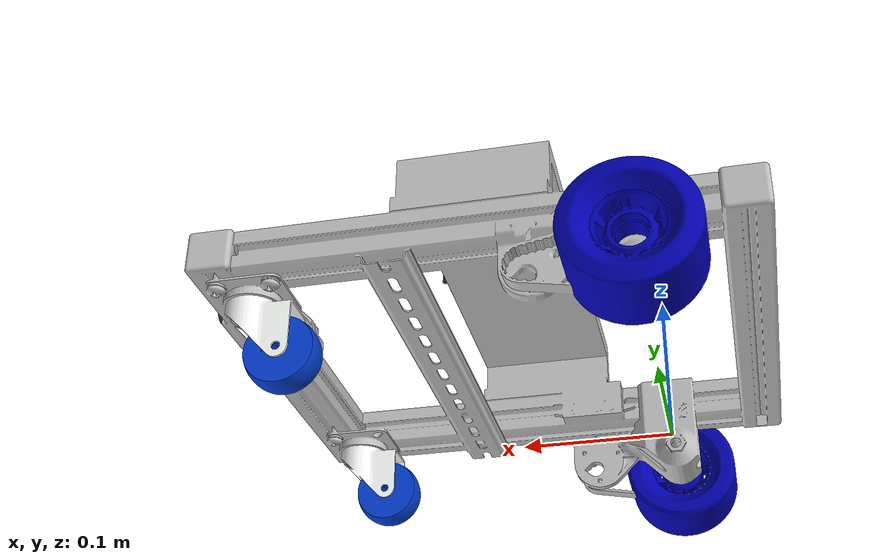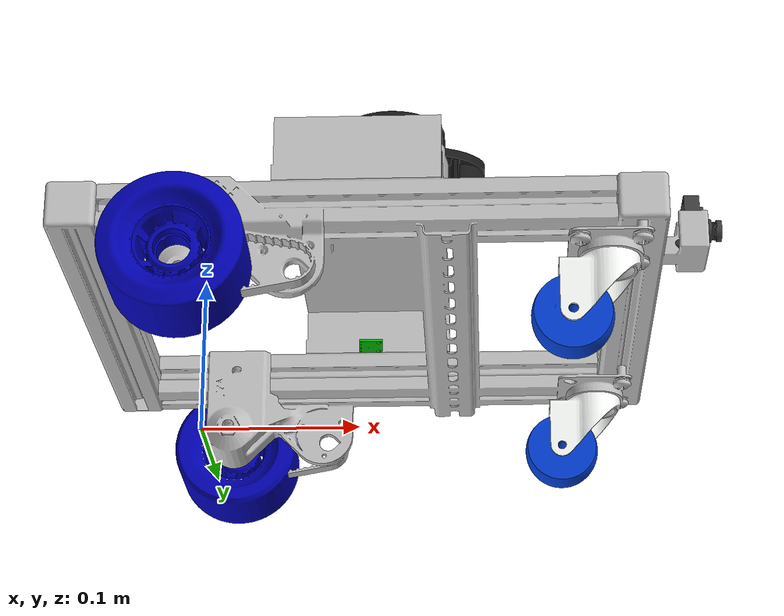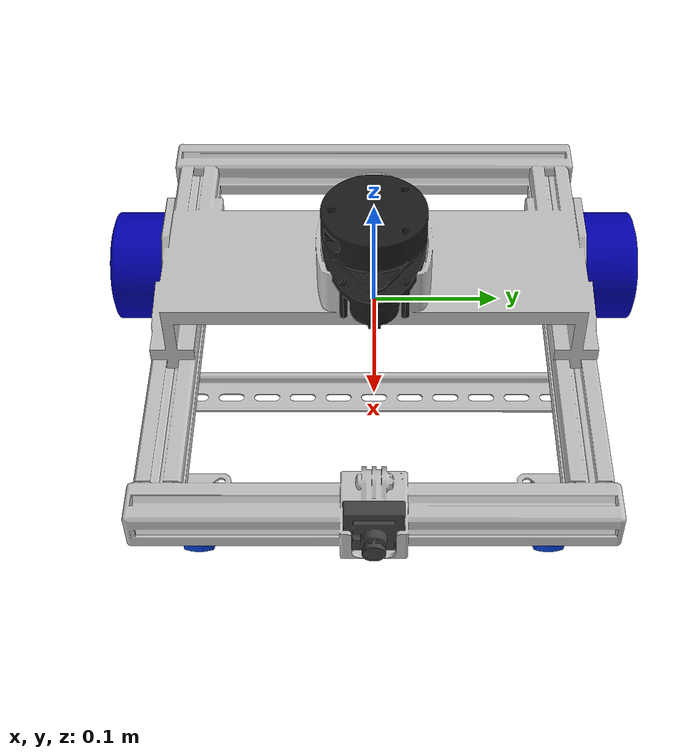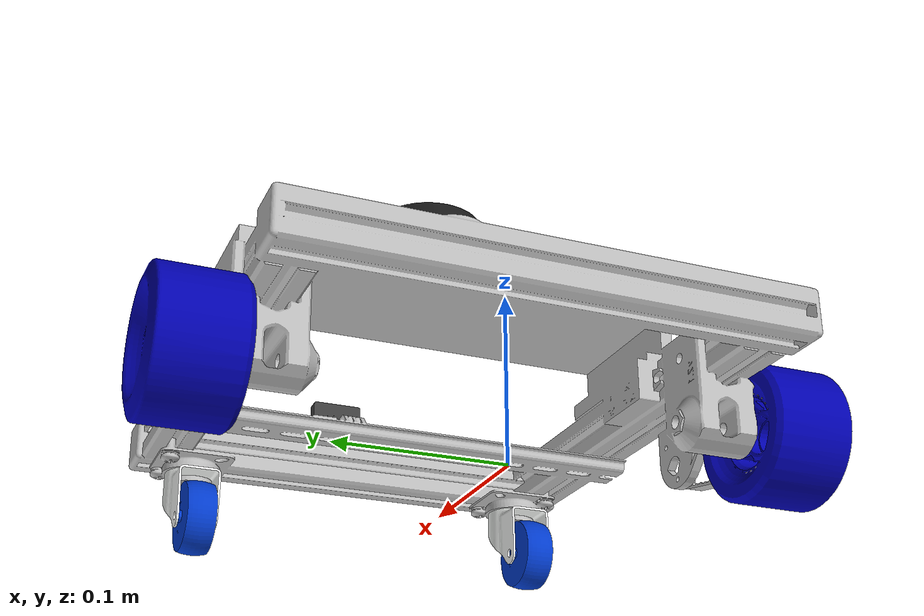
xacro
<?xml version="1.0"?>
<robot name="scuttle" xmlns:xacro="http://www.ros.org/wiki/xacro">

    <xacro:arg name="is_ignition" default="true"/>
    <xacro:arg name="is_sim" default="False"/>

    <xacro:include filename="$(find scuttle_description)/urdf/materials.xacro" />
    <xacro:include filename="$(find scuttle_description)/urdf/scuttle_gazebo.xacro" />
    <xacro:include filename="$(find scuttle_description)/urdf/scuttle_ros2_control.xacro" />

    <link name="base_link">
    </link>

    <joint name="chassis_joint" type="fixed">
        <origin rpy="0 0 0" xyz="0.10539999389648432 0 0.084749938964843793"/>
        <parent link="base_link"/>
        <child link="chassis_link"/>
    </joint>

    <link name="chassis_link">
        <inertial>
            <origin xyz="0.0186619834518535 -0.00566481668803045 0.00285821314817525" rpy="0 0 0" />
            <mass value="2.11836530492584" />
            <inertia ixx="0.00720645292368122" ixy="-2.4086992758464E-07" ixz="-3.48347257751126E-06"
                     iyy="0.00251958862239291" iyz="9.70712899032344E-08" izz="0.00923528201076481" />
        </inertial>
        <visual>
            <origin xyz="0 0 0" rpy="0 0 0" />
            <geometry>
                <mesh filename="package://scuttle_description/meshes/chassis_link.STL" />
            </geometry>
            <material name="">
                <color rgba="0.752941176470588 0.752941176470588 0.752941176470588 1" />
            </material>
        </visual>
        <collision>
            <origin xyz="0 0 0" rpy="0 0 0" />
            <geometry>
                <mesh filename="package://scuttle_description/meshes/chassis_link.STL" />
            </geometry>
        </collision>
    </link>

    <joint name="camera_joint" type="fixed">
        <origin xyz="0.22885 0 0.04721" rpy="0 0 0" />
        <parent link="chassis_link" />
        <child link="camera_link" />
    </joint>

    <link name="camera_link">
        <inertial>
            <origin xyz="-0.0177983462673726 -7.09300539509634E-05 -0.000151685166925195" rpy="0 0 0" />
            <mass value="0.0167460724515451" />
            <inertia ixx="3.10021128481168E-06" ixy="-2.05374604483769E-08" ixz="-2.39460550037463E-08"
                     iyy="2.04412547159972E-06" iyz="-2.79729653570943E-08" izz="2.02123019070592E-06" />
        </inertial>
        <visual>
            <origin xyz="0 0 0" rpy="0 0 0" />
            <geometry>
                <mesh filename="package://scuttle_description/meshes/camera_link.STL" />
            </geometry>
            <material name="gray"/>
        </visual>
        <collision>
            <origin xyz="0 0 0" rpy="0 0 0" />
            <geometry>
                <mesh filename="package://scuttle_description/meshes/camera_link.STL" />
            </geometry>
        </collision>
    </link>

    <joint name="camera_optical_joint" type="fixed">
        <origin xyz="0 0 0" rpy="-1.57079632679 0 -1.57079632679" />
        <parent link="camera_link" />
        <child link="camera_link_optical" />
    </joint>

    <link name="camera_link_optical">
    </link>

    <joint name="l_wheel_joint" type="continuous">
        <origin xyz="-0.1015 0.201 -0.043" rpy="0 0 0" />
        <parent link="chassis_link" />
        <child link="l_wheel_link" />
        <axis xyz="0 1 0" />
    </joint>

    <link name="l_wheel_link">
        <inertial>
            <origin xyz="-1.38777878078145E-17 -0.0249546814177093 1.38777878078145E-17" rpy="0 0 0" />
            <mass value="0.211267384811465" />
            <inertia ixx="0.000150136725565257" ixy="-6.60155090668326E-21" ixz="1.1326090348532E-13"
                     iyy="0.000222203646244572" iyz="-2.34885398456199E-20" izz="0.000150136725559314" />
        </inertial>
        <visual>
            <origin xyz="0 0 0" rpy="0 0 0" />
            <geometry>
                <mesh filename="package://scuttle_description/meshes/l_wheel_link.STL" />
            </geometry>
            <material name="blue">
                <color rgba="0.000 0.000 0.700 1.000" />
            </material>
        </visual>
        <collision>
            <origin xyz="0 0 0" rpy="0 0 0" />
            <geometry>
                <mesh filename="package://scuttle_description/meshes/l_wheel_link.STL" />
            </geometry>
        </collision>
    </link>

    <joint name="r_wheel_joint" type="continuous">
        <origin xyz="-0.1015 -0.201 -0.043" rpy="0 0 0" />
        <parent link="chassis_link" />
        <child link="r_wheel_link" />
        <axis xyz="0 1 0" />
    </joint>

    <link name="r_wheel_link">
        <inertial>
            <origin xyz="-8.51677062208012E-12 0.0249546814155384 2.98291114031457E-11" rpy="0 0 0" />
            <mass value="0.211267385212469" />
            <inertia ixx="0.000150136725694364" ixy="-1.52068325479295E-15" ixz="-8.36590952285509E-14"
                     iyy="0.000222203646357611" iyz="6.46411392186649E-15" izz="0.00015013672559182" />
        </inertial>
        <visual>
            <origin xyz="0 0 0" rpy="0 0 0" />
            <geometry>
                <mesh filename="package://scuttle_description/meshes/r_wheel_link.STL" />
            </geometry>
            <material name="blue">
                <color rgba="0.000 0.000 0.700 1.000" />
            </material>
        </visual>
        <collision>
            <origin xyz="0 0 0" rpy="0 0 0" />
            <geometry>
                <mesh filename="package://scuttle_description/meshes/r_wheel_link.STL" />
            </geometry>
        </collision>
    </link>

    <joint name="l_caster_swivel_joint" type="continuous">
        <origin xyz="0.14925 0.11925 -0.02446" rpy="0 0 0" />
        <parent link="chassis_link" />
        <child link="l_caster_swivel_link" />
        <axis xyz="0 0 1" />
    </joint>

    <link name="l_caster_swivel_link">
        <inertial>
            <origin xyz="-0.0112154265603648 7.10301663597868E-08 -0.012763577562478" rpy="0 0 0" />
            <mass value="0.0446140596925229" />
            <inertia ixx="1.31798468032259E-05" ixy="-1.54395530925204E-10" ixz="-2.67826746048927E-06"
                     iyy="1.35323434649093E-05" iyz="-4.05544389798938E-11" izz="1.44057642656734E-05" />
        </inertial>
        <visual>
            <origin xyz="0 0 0" rpy="0 0 0" />
            <geometry>
                <mesh filename="package://scuttle_description/meshes/l_caster_swivel_link.STL" />
            </geometry>
            <material name="">
                <color rgba="0.988235294117647 1 0.988235294117647 1" />
            </material>
        </visual>
        <collision>
            <origin xyz="0 0 0" rpy="0 0 0" />
            <geometry>
                <mesh filename="package://scuttle_description/meshes/l_caster_swivel_link.STL" />
            </geometry>
        </collision>
    </link>

    <joint name="l_caster_wheel_joint" type="continuous">
        <origin xyz="-0.0234 -0.0093 -0.03654" rpy="0 0 0" />
        <parent link="l_caster_swivel_link" />
        <child link="l_caster_wheel_link" />
        <axis xyz="0 1 0" />
    </joint>

    <link name="l_caster_wheel_link">
        <inertial>
            <origin xyz="-2.77555756156289E-17 0.00929999999999997 6.93889390390723E-18" rpy="0 0 0" />
            <mass value="0.034306971498681" />
            <inertia ixx="6.0005051056636E-06" ixy="-1.19956571805785E-22" ixz="1.95418772348755E-25"
                     iyy="1.00026864795821E-05" iyz="-1.35206702673554E-21" izz="6.0005051056636E-06" />
        </inertial>
        <visual>
            <origin xyz="0 0 0" rpy="0 0 0" />
            <geometry>
                <mesh filename="package://scuttle_description/meshes/l_caster_wheel_link.STL" />
            </geometry>
            <material name="">
                <color rgba="0.00784313725490196 0.23921568627451 0.823529411764706 1" />
            </material>
        </visual>
        <collision>
            <origin xyz="0 0 0" rpy="0 0 0" />
            <geometry>
                <mesh filename="package://scuttle_description/meshes/l_caster_wheel_link.STL" />
            </geometry>
        </collision>
    </link>

    <joint name="r_caster_swivel_joint" type="continuous">
        <origin xyz="0.14925 -0.11925 -0.02446" rpy="0 0 0" />
        <parent link="chassis_link" />
        <child link="r_caster_swivel_link" />
        <axis xyz="0 0 1" />
    </joint>

    <link name="r_caster_swivel_link">
        <inertial>
            <origin xyz="-0.0112154265603646 7.10301664708091E-08 -0.012763577562478" rpy="0 0 0" />
            <mass value="0.044614059692523" />
            <inertia ixx="1.31798468032259E-05" ixy="-1.54395530917566E-10" ixz="-2.67826746049324E-06"
                     iyy="1.35323434648204E-05" iyz="-4.05544389584363E-11" izz="1.44057642655844E-05" />
        </inertial>
        <visual>
            <origin xyz="0 0 0" rpy="0 0 0" />
            <geometry>
                <mesh filename="package://scuttle_description/meshes/r_caster_swivel_link.STL" />
            </geometry>
            <material name="">
                <color rgba="0.988235294117647 1 0.988235294117647 1" />
            </material>
        </visual>
        <collision>
            <origin xyz="0 0 0" rpy="0 0 0" />
            <geometry>
                <mesh filename="package://scuttle_description/meshes/r_caster_swivel_link.STL" />
            </geometry>
        </collision>
    </link>

    <joint name="r_caster_wheel_joint" type="continuous">
        <origin xyz="-0.0234 0.0093 -0.03654" rpy="0 0 0" />
        <parent link="r_caster_swivel_link" />
        <child link="r_caster_wheel_link" />
        <axis xyz="0 1 0" />
    </joint>

    <link name="r_caster_wheel_link">
        <inertial>
            <origin xyz="-2.77555756156289E-17 -0.00929999999999997 6.93889390390723E-18" rpy="0 0 0" />
            <mass value="0.034306971498681" />
            <inertia ixx="6.0005051056636E-06" ixy="5.60061549214674E-22" ixz="-6.85720859329068E-25"
                     iyy="1.00026864795821E-05" iyz="-2.17984329993584E-21" izz="6.0005051056636E-06" />
        </inertial>
        <visual>
            <origin xyz="0 0 0" rpy="0 0 0" />
            <geometry>
                <mesh filename="package://scuttle_description/meshes/r_caster_wheel_link.STL" />
            </geometry>
            <material name="">
                <color rgba="0.00784313725490196 0.23921568627451 0.823529411764706 1" />
            </material>
        </visual>
        <collision>
            <origin xyz="0 0 0" rpy="0 0 0" />
            <geometry>
                <mesh filename="package://scuttle_description/meshes/r_caster_wheel_link.STL" />
            </geometry>
        </collision>
    </link>

    <joint name="lidar_joint" type="fixed">
        <origin xyz="0.015 9.9995E-05 0.10112" rpy="0 0 3.14159265358979" />
        <parent link="chassis_link" />
        <child link="lidar_link" />
    </joint>

    <link name="lidar_link">
        <inertial>
            <origin xyz="-0.00578430252967151 -0.000495105100789571 0.000638309311584678" rpy="0 0 0" />
            <mass value="0.142994095653187" />
            <inertia ixx="4.62767161181516E-05" ixy="-8.53572518984261E-07" ixz="-3.62184026396542E-06"
                     iyy="7.34746440088868E-05" iyz="2.0430417880565E-07" izz="0.000107960183716793" />
        </inertial>
        <visual>
            <origin xyz="0 0 0" rpy="0 0 0" />
            <geometry>
                <mesh filename="package://scuttle_description/meshes/lidar_link.STL" />
            </geometry>
            <material name="">
                <color rgba="0.101960784313725 0.101960784313725 0.101960784313725 1" />
            </material>
        </visual>
        <collision>
            <origin xyz="0 0 0" rpy="0 0 0" />
            <geometry>
                <mesh filename="package://scuttle_description/meshes/lidar_link.STL" />
            </geometry>
        </collision>
    </link>

    <joint name="imu_joint" type="fixed">
        <origin xyz="-0.0032457 0.100 0.0114" rpy="0 0 0" />
        <parent link="chassis_link" />
        <child link="imu_link" />
    </joint>

    <link name="imu_link">
        <inertial>
            <origin xyz="-0.000445809216749271 0.000173072510912531 -0.000691449747380394" rpy="0 0 0" />
            <mass value="0.000528838058158997" />
            <inertia ixx="1.7299981511803E-08" ixy="4.27438785178696E-10" ixz="-7.03956878798692E-11"
                     iyy="1.02740910763395E-08" iyz="-4.96958296675441E-11" izz="2.7208887486467E-08" />
        </inertial>
        <visual>
            <origin xyz="0 0 0" rpy="0 0 0" />
            <geometry>
                <mesh filename="package://scuttle_description/meshes/imu_link.STL" />
            </geometry>
            <material name="green">

            </material>
        </visual>
        <collision>
            <origin xyz="0 0 0" rpy="0 0 0" />
            <geometry>
                <mesh filename="package://scuttle_description/meshes/imu_link.STL" />
            </geometry>
        </collision>
    </link>

</robot>

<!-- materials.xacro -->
<robot name="scuttle" xmlns:xacro="http://www.ros.org/wiki/xacro" >

<material name="silver">
  <color rgba="0.700 0.700 0.700 1.000"/>
</material>

<material name="gray">
  <color rgba="0.250 0.250 0.250 1.000"/>
</material>

<material name="blue">
  <color rgba="0.000 0.000 0.700 1.000"/>
</material>

<material name="green">
  <color rgba="0.000 0.700 0.000 1.000"/>
</material>

</robot>

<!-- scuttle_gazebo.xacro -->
<robot name="scuttle" xmlns:xacro="http://www.ros.org/wiki/xacro">

  <xacro:property name="body_color" value="Gazebo/Silver" />
  <xacro:property name="wheel_color" value="Gazebo/Blue" />
  <xacro:property name="lidar_color" value="Gazebo/Gray" />
  <xacro:property name="imu_color" value="Gazebo/Green" />

  <xacro:arg name="differential_drive_command_topic" default="cmd_vel"/>
  <xacro:arg name="differential_drive_odometry_topic" default="odom"/>
  <xacro:arg name="differential_drive_odometry_frame" default="odom"/>

  <xacro:arg name="is_ignition" default="false"/>

  <gazebo reference="base_link">
    <material>${body_color}</material>
    <mu1>0.2</mu1>
    <mu2>0.2</mu2>
    <selfCollide>true</selfCollide>
    <gravity>true</gravity>
  </gazebo>

  <gazebo reference="l_wheel">
    <material>${wheel_color}</material>
    <mu1>1000000000000000.0</mu1>
    <mu2>1000000000000000.0</mu2>
    <kp>1000000000000.0</kp>
    <kd>10.0</kd>
    <minDepth>0.001</minDepth>
    <maxVel>0.1</maxVel>
    <fdir1>1 0 0</fdir1>
  </gazebo>

  <gazebo reference="r_wheel">
    <material>${wheel_color}</material>
    <mu1>1000000000000000.0</mu1>
    <mu2>1000000000000000.0</mu2>
    <kp>1000000000000.0</kp>
    <kd>10.0</kd>
    <minDepth>0.001</minDepth>
    <maxVel>0.1</maxVel>
    <fdir1>1 0 0</fdir1>
  </gazebo>

  <gazebo reference="l_caster_wheel">
    <material>${wheel_color}</material>
    <mu1>0.1</mu1>
    <mu2>0.1</mu2>
    <kp>1000000.0</kp>
    <kd>100.0</kd>
    <minDepth>0.001</minDepth>
    <maxVel>1.0</maxVel>
  </gazebo>

  <gazebo reference="r_caster_wheel">
    <material>${wheel_color}</material>
    <mu1>0.1</mu1>
    <mu2>0.1</mu2>
    <kp>1000000.0</kp>
    <kd>100.0</kd>
    <minDepth>0.001</minDepth>
    <maxVel>1.0</maxVel>
  </gazebo>

  <gazebo reference="r_caster_swivel">
    <material>${body_color}</material>
    <mu1>0.2</mu1>
    <mu2>0.2</mu2>
    <selfCollide>true</selfCollide>
  </gazebo>

  <gazebo reference="l_caster_swivel">
    <material>${body_color}</material>
    <mu1>0.2</mu1>
    <mu2>0.2</mu2>
    <selfCollide>true</selfCollide>
  </gazebo>

  <gazebo reference="imu_link">
    <material>${imu_color}</material>
    <mu1>0.2</mu1>
    <mu2>0.2</mu2>
    <selfCollide>false</selfCollide>
    <gravity>true</gravity>
  </gazebo>
  <gazebo>
    <xacro:if value="$(arg is_ignition)">
      <plugin filename="ign_ros2_control-system" name="ign_ros2_control::IgnitionROS2ControlPlugin">
        <parameters>$(find scuttle_controller)/config/scuttle_controllers.yaml</parameters>
      </plugin>
      <plugin filename="ignition-gazebo-imu-system" name="ignition::gazebo::systems::Imu" />
      <plugin filename="ignition-gazebo-sensors-system" name="ignition::gazebo::systems::Sensors">
        <render_engine>ogre2</render_engine>
      </plugin>
    </xacro:if>

    <xacro:unless value="$(arg is_ignition)">
      <plugin filename="gz_ros2_control-system" name="gz_ros2_control::GazeboSimROS2ControlPlugin">
        <parameters>$(find scuttle_controller)/config/scuttle_controllers.yaml</parameters>
      </plugin>
      <plugin filename="gz-sim-imu-system" name="gz::sim::systems::Imu" />
      <plugin filename="gz-sim-sensors-system" name="gz::sim::systems::Sensors">
        <render_engine>ogre2</render_engine>
      </plugin>
    </xacro:unless>
  </gazebo>

  <gazebo reference="imu_link">
    <sensor name="imu" type="imu">
        <always_on>true</always_on>
        <update_rate>100</update_rate>
        <gz_frame_id>imu_link</gz_frame_id>
        <topic>imu</topic>
        <imu>
          <angular_velocity>
            <x>
              <noise type="gaussian">
                <mean>0.0</mean>
                <stddev>2e-4</stddev>
              </noise>
            </x>
            <y>
              <noise type="gaussian">
                <mean>0.0</mean>
                <stddev>2e-4</stddev>
              </noise>
            </y>
            <z>
              <noise type="gaussian">
                <mean>0.0</mean>
                <stddev>2e-4</stddev>
              </noise>
            </z>
          </angular_velocity>
          <linear_acceleration>
            <x>
              <noise type="gaussian">
                <mean>0.0</mean>
                <stddev>1.7e-2</stddev>
              </noise>
            </x>
            <y>
              <noise type="gaussian">
                <mean>0.0</mean>
                <stddev>1.7e-2</stddev>
              </noise>
            </y>
            <z>
              <noise type="gaussian">
                <mean>0.0</mean>
                <stddev>1.7e-2</stddev>
              </noise>
            </z>
          </linear_acceleration>
        </imu>
        </sensor>
  </gazebo>

  <gazebo reference="lidar_link">
    <sensor name="lidar" type="gpu_lidar">
      <always_on>true</always_on>
      <visualize>true</visualize>
      <topic>scan</topic>
      <update_rate>5</update_rate>
      <gz_frame_id>lidar_link</gz_frame_id>
      <lidar>
        <scan>
          <horizontal>
            <samples>360</samples>
            <resolution>1.00000</resolution>
            <min_angle>0.000000</min_angle>
            <max_angle>6.280000</max_angle>
          </horizontal>
        </scan>
        <range>
          <min>0.120000</min>
          <max>12.0</max>
          <resolution>0.02</resolution>
        </range>
        </lidar>
    </sensor>
  </gazebo>

  <gazebo reference="camera_link">
    <sensor name="camera" type="camera">
        <always_on>true</always_on>
        <visualize>true</visualize>
        <update_rate>30</update_rate>
        <topic>camera/image_raw</topic>
        <gz_frame_id>camera_link_optical</gz_frame_id>
        <camera>
            <horizontal_fov>2.61799</horizontal_fov>
            <image>
                <width>1280</width>
                <height>720</height>
                <format>R8G8B8</format>
            </image>
            <clip>
                <near>0.05</near>
                <far>8.0</far>
            </clip>
        </camera>
    </sensor>
  </gazebo>

</robot>
